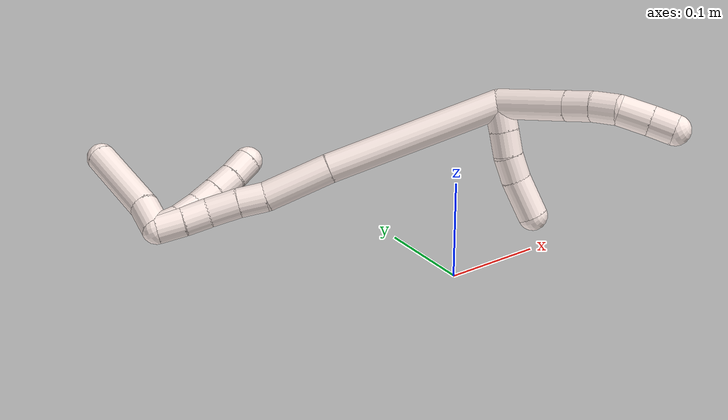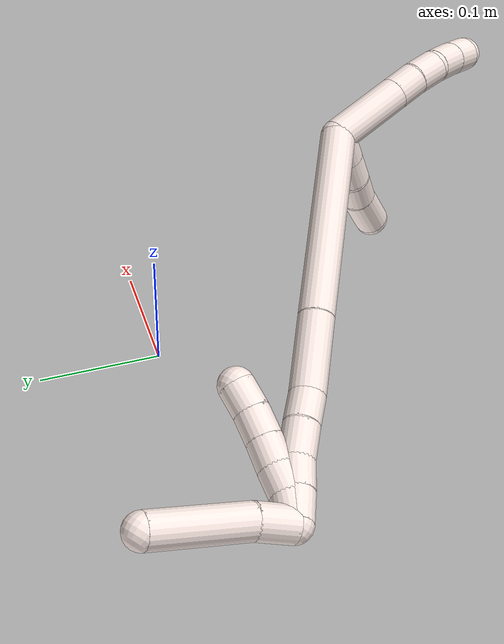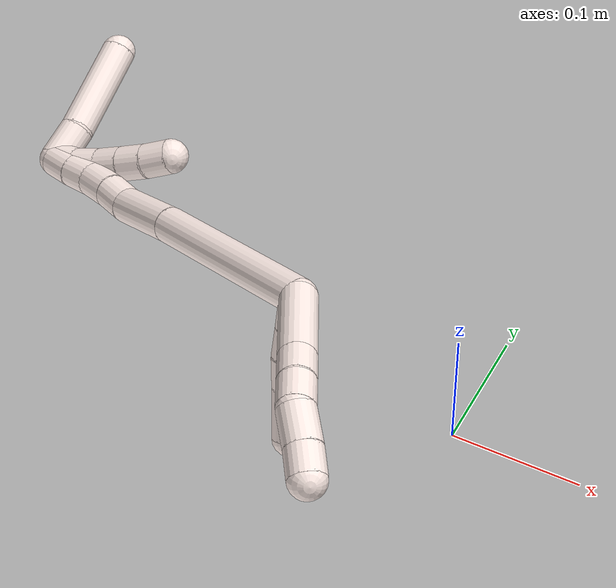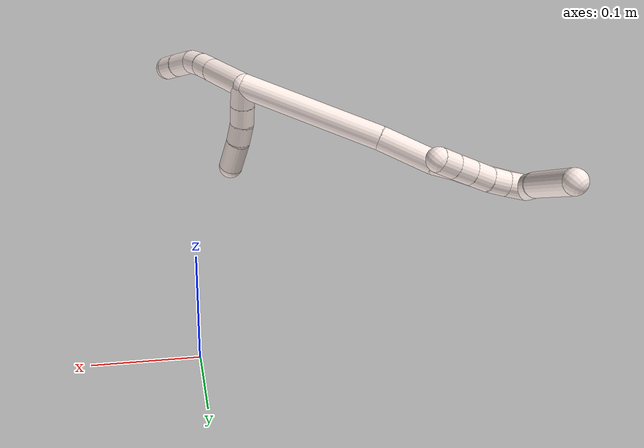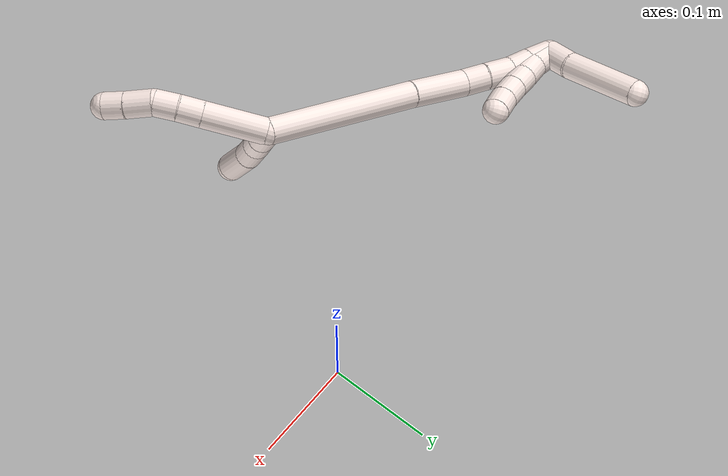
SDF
<sdf version="1.7">
 <world name="default">
  <model name="11">
   <static>0</static>
   <link name="11">
    <collision name="collision-cylinder-e_1_2_8">
     <pose>-0.000356 -0.01154 0.02748 0.397584 -0.01196 -0.002409</pose>
     <geometry><cylinder><radius>0.0125</radius><length>0.059614</length></cylinder></geometry>
     <surface>
      <friction><ode><mu>1.16</mu><mu2>1.16</mu2><slip1>0</slip1><slip2>0</slip2></ode></friction>
      <contact><ode><kp>1e+06</kp><kd>1</kd><max_vel>0</max_vel><min_depth>0.001</min_depth></ode></contact>
     </surface>
    </collision>
    <visual name="visual-cylinder-e_1_2_8">
     <pose>-0.000356 -0.01154 0.02748 0.397584 -0.01196 -0.002409</pose>
     <geometry><cylinder><radius>0.0125</radius><length>0.059614</length></cylinder></geometry>
     <material><ambient>1 0.933333 0.909804 1</ambient></material>
    </visual>
    <collision name="collision-cylinder-e_2_8_9">
     <pose>-0.000899 -0.02733 0.065221 0.392666 -0.016783 -0.003338</pose>
     <geometry><cylinder><radius>0.0125</radius><length>0.022214</length></cylinder></geometry>
     <surface>
      <friction><ode><mu>1.16</mu><mu2>1.16</mu2><slip1>0</slip1><slip2>0</slip2></ode></friction>
      <contact><ode><kp>1e+06</kp><kd>1</kd><max_vel>0</max_vel><min_depth>0.001</min_depth></ode></contact>
     </surface>
    </collision>
    <visual name="visual-cylinder-e_2_8_9">
     <pose>-0.000899 -0.02733 0.065221 0.392666 -0.016783 -0.003338</pose>
     <geometry><cylinder><radius>0.0125</radius><length>0.022214</length></cylinder></geometry>
     <material><ambient>1 0.933333 0.909804 1</ambient></material>
    </visual>
    <collision name="collision-cylinder-e_3_9_10">
     <pose>-0.000907 -0.036802 0.085121 0.496449 0.016315 0.004135</pose>
     <geometry><cylinder><radius>0.0125</radius><length>0.021929</length></cylinder></geometry>
     <surface>
      <friction><ode><mu>1.16</mu><mu2>1.16</mu2><slip1>0</slip1><slip2>0</slip2></ode></friction>
      <contact><ode><kp>1e+06</kp><kd>1</kd><max_vel>0</max_vel><min_depth>0.001</min_depth></ode></contact>
     </surface>
    </collision>
    <visual name="visual-cylinder-e_3_9_10">
     <pose>-0.000907 -0.036802 0.085121 0.496449 0.016315 0.004135</pose>
     <geometry><cylinder><radius>0.0125</radius><length>0.021929</length></cylinder></geometry>
     <material><ambient>1 0.933333 0.909804 1</ambient></material>
    </visual>
    <collision name="collision-cylinder-e_4_10_11">
     <pose>0.003004 -0.050134 0.10427 0.706178 0.290167 0.107589</pose>
     <geometry><cylinder><radius>0.0125</radius><length>0.026088</length></cylinder></geometry>
     <surface>
      <friction><ode><mu>1.16</mu><mu2>1.16</mu2><slip1>0</slip1><slip2>0</slip2></ode></friction>
      <contact><ode><kp>1e+06</kp><kd>1</kd><max_vel>0</max_vel><min_depth>0.001</min_depth></ode></contact>
     </surface>
    </collision>
    <visual name="visual-cylinder-e_4_10_11">
     <pose>0.003004 -0.050134 0.10427 0.706178 0.290167 0.107589</pose>
     <geometry><cylinder><radius>0.0125</radius><length>0.026088</length></cylinder></geometry>
     <material><ambient>1 0.933333 0.909804 1</ambient></material>
    </visual>
    <collision name="collision-cylinder-e_5_11_6">
     <pose>0.009119 -0.064805 0.121048 0.734205 0.238788 0.092195</pose>
     <geometry><cylinder><radius>0.0125</radius><length>0.020154</length></cylinder></geometry>
     <surface>
      <friction><ode><mu>1.16</mu><mu2>1.16</mu2><slip1>0</slip1><slip2>0</slip2></ode></friction>
      <contact><ode><kp>1e+06</kp><kd>1</kd><max_vel>0</max_vel><min_depth>0.001</min_depth></ode></contact>
     </surface>
    </collision>
    <visual name="visual-cylinder-e_5_11_6">
     <pose>0.009119 -0.064805 0.121048 0.734205 0.238788 0.092195</pose>
     <geometry><cylinder><radius>0.0125</radius><length>0.020154</length></cylinder></geometry>
     <material><ambient>1 0.933333 0.909804 1</ambient></material>
    </visual>
    <collision name="collision-cylinder-e_1_2_12">
     <pose>0.002697 -0.010672 -0.002666 1.81556 0.240459 0.306964</pose>
     <geometry><cylinder><radius>0.0125</radius><length>0.022652</length></cylinder></geometry>
     <surface>
      <friction><ode><mu>1.16</mu><mu2>1.16</mu2><slip1>0</slip1><slip2>0</slip2></ode></friction>
      <contact><ode><kp>1e+06</kp><kd>1</kd><max_vel>0</max_vel><min_depth>0.001</min_depth></ode></contact>
     </surface>
    </collision>
    <visual name="visual-cylinder-e_1_2_12">
     <pose>0.002697 -0.010672 -0.002666 1.81556 0.240459 0.306964</pose>
     <geometry><cylinder><radius>0.0125</radius><length>0.022652</length></cylinder></geometry>
     <material><ambient>1 0.933333 0.909804 1</ambient></material>
    </visual>
    <collision name="collision-cylinder-e_2_12_13">
     <pose>0.007796 -0.03132 -0.008045 1.83645 0.228196 0.297666</pose>
     <geometry><cylinder><radius>0.0125</radius><length>0.021228</length></cylinder></geometry>
     <surface>
      <friction><ode><mu>1.16</mu><mu2>1.16</mu2><slip1>0</slip1><slip2>0</slip2></ode></friction>
      <contact><ode><kp>1e+06</kp><kd>1</kd><max_vel>0</max_vel><min_depth>0.001</min_depth></ode></contact>
     </surface>
    </collision>
    <visual name="visual-cylinder-e_2_12_13">
     <pose>0.007796 -0.03132 -0.008045 1.83645 0.228196 0.297666</pose>
     <geometry><cylinder><radius>0.0125</radius><length>0.021228</length></cylinder></geometry>
     <material><ambient>1 0.933333 0.909804 1</ambient></material>
    </visual>
    <collision name="collision-cylinder-e_3_13_14">
     <pose>0.014073 -0.051312 -0.012421 1.73511 0.364758 0.428377</pose>
     <geometry><cylinder><radius>0.0125</radius><length>0.021736</length></cylinder></geometry>
     <surface>
      <friction><ode><mu>1.16</mu><mu2>1.16</mu2><slip1>0</slip1><slip2>0</slip2></ode></friction>
      <contact><ode><kp>1e+06</kp><kd>1</kd><max_vel>0</max_vel><min_depth>0.001</min_depth></ode></contact>
     </surface>
    </collision>
    <visual name="visual-cylinder-e_3_13_14">
     <pose>0.014073 -0.051312 -0.012421 1.73511 0.364758 0.428377</pose>
     <geometry><cylinder><radius>0.0125</radius><length>0.021736</length></cylinder></geometry>
     <material><ambient>1 0.933333 0.909804 1</ambient></material>
    </visual>
    <collision name="collision-cylinder-e_4_14_5">
     <pose>0.023472 -0.077607 -0.014391 1.58983 0.326953 0.333121</pose>
     <geometry><cylinder><radius>0.0125</radius><length>0.034385</length></cylinder></geometry>
     <surface>
      <friction><ode><mu>1.16</mu><mu2>1.16</mu2><slip1>0</slip1><slip2>0</slip2></ode></friction>
      <contact><ode><kp>1e+06</kp><kd>1</kd><max_vel>0</max_vel><min_depth>0.001</min_depth></ode></contact>
     </surface>
    </collision>
    <visual name="visual-cylinder-e_4_14_5">
     <pose>0.023472 -0.077607 -0.014391 1.58983 0.326953 0.333121</pose>
     <geometry><cylinder><radius>0.0125</radius><length>0.034385</length></cylinder></geometry>
     <material><ambient>1 0.933333 0.909804 1</ambient></material>
    </visual>
    <collision name="collision-cylinder-e_1_2_15">
     <pose>-0.035432 -0.004268 -0.065969 3.07698 -0.492014 -2.88558</pose>
     <geometry><cylinder><radius>0.0125</radius><length>0.150008</length></cylinder></geometry>
     <surface>
      <friction><ode><mu>1.16</mu><mu2>1.16</mu2><slip1>0</slip1><slip2>0</slip2></ode></friction>
      <contact><ode><kp>1e+06</kp><kd>1</kd><max_vel>0</max_vel><min_depth>0.001</min_depth></ode></contact>
     </surface>
    </collision>
    <visual name="visual-cylinder-e_1_2_15">
     <pose>-0.035432 -0.004268 -0.065969 3.07698 -0.492014 -2.88558</pose>
     <geometry><cylinder><radius>0.0125</radius><length>0.150008</length></cylinder></geometry>
     <material><ambient>1 0.933333 0.909804 1</ambient></material>
    </visual>
    <collision name="collision-cylinder-e_2_15_16">
     <pose>-0.083304 -0.011654 -0.157253 3.01906 -0.453797 -2.62221</pose>
     <geometry><cylinder><radius>0.0125</radius><length>0.056756</length></cylinder></geometry>
     <surface>
      <friction><ode><mu>1.16</mu><mu2>1.16</mu2><slip1>0</slip1><slip2>0</slip2></ode></friction>
      <contact><ode><kp>1e+06</kp><kd>1</kd><max_vel>0</max_vel><min_depth>0.001</min_depth></ode></contact>
     </surface>
    </collision>
    <visual name="visual-cylinder-e_2_15_16">
     <pose>-0.083304 -0.011654 -0.157253 3.01906 -0.453797 -2.62221</pose>
     <geometry><cylinder><radius>0.0125</radius><length>0.056756</length></cylinder></geometry>
     <material><ambient>1 0.933333 0.909804 1</ambient></material>
    </visual>
    <collision name="collision-cylinder-e_3_16_17">
     <pose>-0.101502 -0.013858 -0.192488 -3.04973 -0.524034 2.80211</pose>
     <geometry><cylinder><radius>0.0125</radius><length>0.023012</length></cylinder></geometry>
     <surface>
      <friction><ode><mu>1.16</mu><mu2>1.16</mu2><slip1>0</slip1><slip2>0</slip2></ode></friction>
      <contact><ode><kp>1e+06</kp><kd>1</kd><max_vel>0</max_vel><min_depth>0.001</min_depth></ode></contact>
     </surface>
    </collision>
    <visual name="visual-cylinder-e_3_16_17">
     <pose>-0.101502 -0.013858 -0.192488 -3.04973 -0.524034 2.80211</pose>
     <geometry><cylinder><radius>0.0125</radius><length>0.023012</length></cylinder></geometry>
     <material><ambient>1 0.933333 0.909804 1</ambient></material>
    </visual>
    <collision name="collision-cylinder-e_4_17_18">
     <pose>-0.113477 -0.013016 -0.213781 3.13524 -0.500301 -3.11673</pose>
     <geometry><cylinder><radius>0.0125</radius><length>0.025923</length></cylinder></geometry>
     <surface>
      <friction><ode><mu>1.16</mu><mu2>1.16</mu2><slip1>0</slip1><slip2>0</slip2></ode></friction>
      <contact><ode><kp>1e+06</kp><kd>1</kd><max_vel>0</max_vel><min_depth>0.001</min_depth></ode></contact>
     </surface>
    </collision>
    <visual name="visual-cylinder-e_4_17_18">
     <pose>-0.113477 -0.013016 -0.213781 3.13524 -0.500301 -3.11673</pose>
     <geometry><cylinder><radius>0.0125</radius><length>0.025923</length></cylinder></geometry>
     <material><ambient>1 0.933333 0.909804 1</ambient></material>
    </visual>
    <collision name="collision-cylinder-e_5_18_19">
     <pose>-0.126171 -0.013682 -0.233839 3.07335 -0.639547 -2.93616</pose>
     <geometry><cylinder><radius>0.0125</radius><length>0.021701</length></cylinder></geometry>
     <surface>
      <friction><ode><mu>1.16</mu><mu2>1.16</mu2><slip1>0</slip1><slip2>0</slip2></ode></friction>
      <contact><ode><kp>1e+06</kp><kd>1</kd><max_vel>0</max_vel><min_depth>0.001</min_depth></ode></contact>
     </surface>
    </collision>
    <visual name="visual-cylinder-e_5_18_19">
     <pose>-0.126171 -0.013682 -0.233839 3.07335 -0.639547 -2.93616</pose>
     <geometry><cylinder><radius>0.0125</radius><length>0.021701</length></cylinder></geometry>
     <material><ambient>1 0.933333 0.909804 1</ambient></material>
    </visual>
    <collision name="collision-cylinder-e_6_19_1">
     <pose>-0.13918 -0.014182 -0.251744 -3.13139 -0.616524 3.10956</pose>
     <geometry><cylinder><radius>0.0125</radius><length>0.0226</length></cylinder></geometry>
     <surface>
      <friction><ode><mu>1.16</mu><mu2>1.16</mu2><slip1>0</slip1><slip2>0</slip2></ode></friction>
      <contact><ode><kp>1e+06</kp><kd>1</kd><max_vel>0</max_vel><min_depth>0.001</min_depth></ode></contact>
     </surface>
    </collision>
    <visual name="visual-cylinder-e_6_19_1">
     <pose>-0.13918 -0.014182 -0.251744 -3.13139 -0.616524 3.10956</pose>
     <geometry><cylinder><radius>0.0125</radius><length>0.0226</length></cylinder></geometry>
     <material><ambient>1 0.933333 0.909804 1</ambient></material>
    </visual>
    <collision name="collision-cylinder-e_1_1_20">
     <pose>-0.138666 -0.012618 -0.254023 -0.208733 0.782077 -0.086314</pose>
     <geometry><cylinder><radius>0.0125</radius><length>0.02</length></cylinder></geometry>
     <surface>
      <friction><ode><mu>1.16</mu><mu2>1.16</mu2><slip1>0</slip1><slip2>0</slip2></ode></friction>
      <contact><ode><kp>1e+06</kp><kd>1</kd><max_vel>0</max_vel><min_depth>0.001</min_depth></ode></contact>
     </surface>
    </collision>
    <visual name="visual-cylinder-e_1_1_20">
     <pose>-0.138666 -0.012618 -0.254023 -0.208733 0.782077 -0.086314</pose>
     <geometry><cylinder><radius>0.0125</radius><length>0.02</length></cylinder></geometry>
     <material><ambient>1 0.933333 0.909804 1</ambient></material>
    </visual>
    <collision name="collision-cylinder-e_2_20_21">
     <pose>-0.124111 -0.007614 -0.241501 -0.564432 0.849251 -0.260709</pose>
     <geometry><cylinder><radius>0.0125</radius><length>0.02</length></cylinder></geometry>
     <surface>
      <friction><ode><mu>1.16</mu><mu2>1.16</mu2><slip1>0</slip1><slip2>0</slip2></ode></friction>
      <contact><ode><kp>1e+06</kp><kd>1</kd><max_vel>0</max_vel><min_depth>0.001</min_depth></ode></contact>
     </surface>
    </collision>
    <visual name="visual-cylinder-e_2_20_21">
     <pose>-0.124111 -0.007614 -0.241501 -0.564432 0.849251 -0.260709</pose>
     <geometry><cylinder><radius>0.0125</radius><length>0.02</length></cylinder></geometry>
     <material><ambient>1 0.933333 0.909804 1</ambient></material>
    </visual>
    <collision name="collision-cylinder-e_3_21_22">
     <pose>-0.109788 0.000154 -0.229952 -0.61708 0.749834 -0.249548</pose>
     <geometry><cylinder><radius>0.0125</radius><length>0.02</length></cylinder></geometry>
     <surface>
      <friction><ode><mu>1.16</mu><mu2>1.16</mu2><slip1>0</slip1><slip2>0</slip2></ode></friction>
      <contact><ode><kp>1e+06</kp><kd>1</kd><max_vel>0</max_vel><min_depth>0.001</min_depth></ode></contact>
     </surface>
    </collision>
    <visual name="visual-cylinder-e_3_21_22">
     <pose>-0.109788 0.000154 -0.229952 -0.61708 0.749834 -0.249548</pose>
     <geometry><cylinder><radius>0.0125</radius><length>0.02</length></cylinder></geometry>
     <material><ambient>1 0.933333 0.909804 1</ambient></material>
    </visual>
    <collision name="collision-cylinder-e_4_22_23">
     <pose>-0.096052 0.008838 -0.218299 -0.664074 0.764299 -0.275403</pose>
     <geometry><cylinder><radius>0.0125</radius><length>0.02</length></cylinder></geometry>
     <surface>
      <friction><ode><mu>1.16</mu><mu2>1.16</mu2><slip1>0</slip1><slip2>0</slip2></ode></friction>
      <contact><ode><kp>1e+06</kp><kd>1</kd><max_vel>0</max_vel><min_depth>0.001</min_depth></ode></contact>
     </surface>
    </collision>
    <visual name="visual-cylinder-e_4_22_23">
     <pose>-0.096052 0.008838 -0.218299 -0.664074 0.764299 -0.275403</pose>
     <geometry><cylinder><radius>0.0125</radius><length>0.02</length></cylinder></geometry>
     <material><ambient>1 0.933333 0.909804 1</ambient></material>
    </visual>
    <collision name="collision-cylinder-e_5_23_4">
     <pose>-0.082118 0.018436 -0.207685 -0.80724 0.777302 -0.346249</pose>
     <geometry><cylinder><radius>0.0125</radius><length>0.02</length></cylinder></geometry>
     <surface>
      <friction><ode><mu>1.16</mu><mu2>1.16</mu2><slip1>0</slip1><slip2>0</slip2></ode></friction>
      <contact><ode><kp>1e+06</kp><kd>1</kd><max_vel>0</max_vel><min_depth>0.001</min_depth></ode></contact>
     </surface>
    </collision>
    <visual name="visual-cylinder-e_5_23_4">
     <pose>-0.082118 0.018436 -0.207685 -0.80724 0.777302 -0.346249</pose>
     <geometry><cylinder><radius>0.0125</radius><length>0.02</length></cylinder></geometry>
     <material><ambient>1 0.933333 0.909804 1</ambient></material>
    </visual>
    <collision name="collision-cylinder-e_1_1_24">
     <pose>-0.141486 -0.002463 -0.266903 -2.04318 0.31323 -0.505017</pose>
     <geometry><cylinder><radius>0.0125</radius><length>0.027443</length></cylinder></geometry>
     <surface>
      <friction><ode><mu>1.16</mu><mu2>1.16</mu2><slip1>0</slip1><slip2>0</slip2></ode></friction>
      <contact><ode><kp>1e+06</kp><kd>1</kd><max_vel>0</max_vel><min_depth>0.001</min_depth></ode></contact>
     </surface>
    </collision>
    <visual name="visual-cylinder-e_1_1_24">
     <pose>-0.141486 -0.002463 -0.266903 -2.04318 0.31323 -0.505017</pose>
     <geometry><cylinder><radius>0.0125</radius><length>0.027443</length></cylinder></geometry>
     <material><ambient>1 0.933333 0.909804 1</ambient></material>
    </visual>
    <collision name="collision-cylinder-e_2_24_3">
     <pose>-0.129602 0.038185 -0.293217 -2.18284 0.21263 -0.404968</pose>
     <geometry><cylinder><radius>0.0125</radius><length>0.072557</length></cylinder></geometry>
     <surface>
      <friction><ode><mu>1.16</mu><mu2>1.16</mu2><slip1>0</slip1><slip2>0</slip2></ode></friction>
      <contact><ode><kp>1e+06</kp><kd>1</kd><max_vel>0</max_vel><min_depth>0.001</min_depth></ode></contact>
     </surface>
    </collision>
    <visual name="visual-cylinder-e_2_24_3">
     <pose>-0.129602 0.038185 -0.293217 -2.18284 0.21263 -0.404968</pose>
     <geometry><cylinder><radius>0.0125</radius><length>0.072557</length></cylinder></geometry>
     <material><ambient>1 0.933333 0.909804 1</ambient></material>
    </visual>
    <collision name="collision-sphere-3">
     <pose>-0.121946 0.067209 -0.313591 0 -0 0</pose>
     <geometry><sphere><radius>0.0125</radius></sphere></geometry>
     <surface>
      <friction><ode><mu>1.16</mu><mu2>1.16</mu2><slip1>0</slip1><slip2>0</slip2></ode></friction>
      <contact><ode><kp>1e+06</kp><kd>1</kd><max_vel>0</max_vel><min_depth>0.001</min_depth></ode></contact>
     </surface>
    </collision>
    <visual name="visual-sphere-3">
     <pose>-0.121946 0.067209 -0.313591 0 -0 0</pose>
     <geometry><sphere><radius>0.0125</radius></sphere></geometry>
     <material><ambient>1 0.933333 0.909804 1</ambient></material>
    </visual>
    <collision name="collision-sphere-24">
     <pose>-0.137258 0.009161 -0.272842 0 -0 0</pose>
     <geometry><sphere><radius>0.0125</radius></sphere></geometry>
     <surface>
      <friction><ode><mu>1.16</mu><mu2>1.16</mu2><slip1>0</slip1><slip2>0</slip2></ode></friction>
      <contact><ode><kp>1e+06</kp><kd>1</kd><max_vel>0</max_vel><min_depth>0.001</min_depth></ode></contact>
     </surface>
    </collision>
    <visual name="visual-sphere-24">
     <pose>-0.137258 0.009161 -0.272842 0 -0 0</pose>
     <geometry><sphere><radius>0.0125</radius></sphere></geometry>
     <material><ambient>1 0.933333 0.909804 1</ambient></material>
    </visual>
    <collision name="collision-sphere-4">
     <pose>-0.075105 0.023585 -0.202756 0 -0 0</pose>
     <geometry><sphere><radius>0.0125</radius></sphere></geometry>
     <surface>
      <friction><ode><mu>1.16</mu><mu2>1.16</mu2><slip1>0</slip1><slip2>0</slip2></ode></friction>
      <contact><ode><kp>1e+06</kp><kd>1</kd><max_vel>0</max_vel><min_depth>0.001</min_depth></ode></contact>
     </surface>
    </collision>
    <visual name="visual-sphere-4">
     <pose>-0.075105 0.023585 -0.202756 0 -0 0</pose>
     <geometry><sphere><radius>0.0125</radius></sphere></geometry>
     <material><ambient>1 0.933333 0.909804 1</ambient></material>
    </visual>
    <collision name="collision-sphere-23">
     <pose>-0.089132 0.013287 -0.212614 0 -0 0</pose>
     <geometry><sphere><radius>0.0125</radius></sphere></geometry>
     <surface>
      <friction><ode><mu>1.16</mu><mu2>1.16</mu2><slip1>0</slip1><slip2>0</slip2></ode></friction>
      <contact><ode><kp>1e+06</kp><kd>1</kd><max_vel>0</max_vel><min_depth>0.001</min_depth></ode></contact>
     </surface>
    </collision>
    <visual name="visual-sphere-23">
     <pose>-0.089132 0.013287 -0.212614 0 -0 0</pose>
     <geometry><sphere><radius>0.0125</radius></sphere></geometry>
     <material><ambient>1 0.933333 0.909804 1</ambient></material>
    </visual>
    <collision name="collision-sphere-22">
     <pose>-0.102973 0.004389 -0.223983 0 -0 0</pose>
     <geometry><sphere><radius>0.0125</radius></sphere></geometry>
     <surface>
      <friction><ode><mu>1.16</mu><mu2>1.16</mu2><slip1>0</slip1><slip2>0</slip2></ode></friction>
      <contact><ode><kp>1e+06</kp><kd>1</kd><max_vel>0</max_vel><min_depth>0.001</min_depth></ode></contact>
     </surface>
    </collision>
    <visual name="visual-sphere-22">
     <pose>-0.102973 0.004389 -0.223983 0 -0 0</pose>
     <geometry><sphere><radius>0.0125</radius></sphere></geometry>
     <material><ambient>1 0.933333 0.909804 1</ambient></material>
    </visual>
    <collision name="collision-sphere-21">
     <pose>-0.116603 -0.00408 -0.23592 0 -0 0</pose>
     <geometry><sphere><radius>0.0125</radius></sphere></geometry>
     <surface>
      <friction><ode><mu>1.16</mu><mu2>1.16</mu2><slip1>0</slip1><slip2>0</slip2></ode></friction>
      <contact><ode><kp>1e+06</kp><kd>1</kd><max_vel>0</max_vel><min_depth>0.001</min_depth></ode></contact>
     </surface>
    </collision>
    <visual name="visual-sphere-21">
     <pose>-0.116603 -0.00408 -0.23592 0 -0 0</pose>
     <geometry><sphere><radius>0.0125</radius></sphere></geometry>
     <material><ambient>1 0.933333 0.909804 1</ambient></material>
    </visual>
    <collision name="collision-sphere-20">
     <pose>-0.131619 -0.011147 -0.247082 0 -0 0</pose>
     <geometry><sphere><radius>0.0125</radius></sphere></geometry>
     <surface>
      <friction><ode><mu>1.16</mu><mu2>1.16</mu2><slip1>0</slip1><slip2>0</slip2></ode></friction>
      <contact><ode><kp>1e+06</kp><kd>1</kd><max_vel>0</max_vel><min_depth>0.001</min_depth></ode></contact>
     </surface>
    </collision>
    <visual name="visual-sphere-20">
     <pose>-0.131619 -0.011147 -0.247082 0 -0 0</pose>
     <geometry><sphere><radius>0.0125</radius></sphere></geometry>
     <material><ambient>1 0.933333 0.909804 1</ambient></material>
    </visual>
    <collision name="collision-sphere-6">
     <pose>0.011503 -0.071365 0.128317 0 -0 0</pose>
     <geometry><sphere><radius>0.0125</radius></sphere></geometry>
     <surface>
      <friction><ode><mu>1.16</mu><mu2>1.16</mu2><slip1>0</slip1><slip2>0</slip2></ode></friction>
      <contact><ode><kp>1e+06</kp><kd>1</kd><max_vel>0</max_vel><min_depth>0.001</min_depth></ode></contact>
     </surface>
    </collision>
    <visual name="visual-sphere-6">
     <pose>0.011503 -0.071365 0.128317 0 -0 0</pose>
     <geometry><sphere><radius>0.0125</radius></sphere></geometry>
     <material><ambient>1 0.933333 0.909804 1</ambient></material>
    </visual>
    <collision name="collision-sphere-11">
     <pose>0.006736 -0.058245 0.11378 0 -0 0</pose>
     <geometry><sphere><radius>0.0125</radius></sphere></geometry>
     <surface>
      <friction><ode><mu>1.16</mu><mu2>1.16</mu2><slip1>0</slip1><slip2>0</slip2></ode></friction>
      <contact><ode><kp>1e+06</kp><kd>1</kd><max_vel>0</max_vel><min_depth>0.001</min_depth></ode></contact>
     </surface>
    </collision>
    <visual name="visual-sphere-11">
     <pose>0.006736 -0.058245 0.11378 0 -0 0</pose>
     <geometry><sphere><radius>0.0125</radius></sphere></geometry>
     <material><ambient>1 0.933333 0.909804 1</ambient></material>
    </visual>
    <collision name="collision-sphere-10">
     <pose>-0.000728 -0.042023 0.094761 0 -0 0</pose>
     <geometry><sphere><radius>0.0125</radius></sphere></geometry>
     <surface>
      <friction><ode><mu>1.16</mu><mu2>1.16</mu2><slip1>0</slip1><slip2>0</slip2></ode></friction>
      <contact><ode><kp>1e+06</kp><kd>1</kd><max_vel>0</max_vel><min_depth>0.001</min_depth></ode></contact>
     </surface>
    </collision>
    <visual name="visual-sphere-10">
     <pose>-0.000728 -0.042023 0.094761 0 -0 0</pose>
     <geometry><sphere><radius>0.0125</radius></sphere></geometry>
     <material><ambient>1 0.933333 0.909804 1</ambient></material>
    </visual>
    <collision name="collision-sphere-9">
     <pose>-0.001086 -0.03158 0.075481 0 -0 0</pose>
     <geometry><sphere><radius>0.0125</radius></sphere></geometry>
     <surface>
      <friction><ode><mu>1.16</mu><mu2>1.16</mu2><slip1>0</slip1><slip2>0</slip2></ode></friction>
      <contact><ode><kp>1e+06</kp><kd>1</kd><max_vel>0</max_vel><min_depth>0.001</min_depth></ode></contact>
     </surface>
    </collision>
    <visual name="visual-sphere-9">
     <pose>-0.001086 -0.03158 0.075481 0 -0 0</pose>
     <geometry><sphere><radius>0.0125</radius></sphere></geometry>
     <material><ambient>1 0.933333 0.909804 1</ambient></material>
    </visual>
    <collision name="collision-sphere-2">
     <geometry><sphere><radius>0.0125</radius></sphere></geometry>
     <surface>
      <friction><ode><mu>1.16</mu><mu2>1.16</mu2><slip1>0</slip1><slip2>0</slip2></ode></friction>
      <contact><ode><kp>1e+06</kp><kd>1</kd><max_vel>0</max_vel><min_depth>0.001</min_depth></ode></contact>
     </surface>
    </collision>
    <visual name="visual-sphere-2">
     <geometry><sphere><radius>0.0125</radius></sphere></geometry>
     <material><ambient>1 0.933333 0.909804 1</ambient></material>
    </visual>
    <collision name="collision-sphere-19">
     <pose>-0.132647 -0.014276 -0.242525 0 -0 0</pose>
     <geometry><sphere><radius>0.0125</radius></sphere></geometry>
     <surface>
      <friction><ode><mu>1.16</mu><mu2>1.16</mu2><slip1>0</slip1><slip2>0</slip2></ode></friction>
      <contact><ode><kp>1e+06</kp><kd>1</kd><max_vel>0</max_vel><min_depth>0.001</min_depth></ode></contact>
     </surface>
    </collision>
    <visual name="visual-sphere-19">
     <pose>-0.132647 -0.014276 -0.242525 0 -0 0</pose>
     <geometry><sphere><radius>0.0125</radius></sphere></geometry>
     <material><ambient>1 0.933333 0.909804 1</ambient></material>
    </visual>
    <collision name="collision-sphere-8">
     <pose>-0.000713 -0.023081 0.05496 0 -0 0</pose>
     <geometry><sphere><radius>0.0125</radius></sphere></geometry>
     <surface>
      <friction><ode><mu>1.16</mu><mu2>1.16</mu2><slip1>0</slip1><slip2>0</slip2></ode></friction>
      <contact><ode><kp>1e+06</kp><kd>1</kd><max_vel>0</max_vel><min_depth>0.001</min_depth></ode></contact>
     </surface>
    </collision>
    <visual name="visual-sphere-8">
     <pose>-0.000713 -0.023081 0.05496 0 -0 0</pose>
     <geometry><sphere><radius>0.0125</radius></sphere></geometry>
     <material><ambient>1 0.933333 0.909804 1</ambient></material>
    </visual>
    <collision name="collision-sphere-12">
     <pose>0.005394 -0.021344 -0.005331 0 -0 0</pose>
     <geometry><sphere><radius>0.0125</radius></sphere></geometry>
     <surface>
      <friction><ode><mu>1.16</mu><mu2>1.16</mu2><slip1>0</slip1><slip2>0</slip2></ode></friction>
      <contact><ode><kp>1e+06</kp><kd>1</kd><max_vel>0</max_vel><min_depth>0.001</min_depth></ode></contact>
     </surface>
    </collision>
    <visual name="visual-sphere-12">
     <pose>0.005394 -0.021344 -0.005331 0 -0 0</pose>
     <geometry><sphere><radius>0.0125</radius></sphere></geometry>
     <material><ambient>1 0.933333 0.909804 1</ambient></material>
    </visual>
    <collision name="collision-sphere-13">
     <pose>0.010197 -0.041296 -0.01076 0 -0 0</pose>
     <geometry><sphere><radius>0.0125</radius></sphere></geometry>
     <surface>
      <friction><ode><mu>1.16</mu><mu2>1.16</mu2><slip1>0</slip1><slip2>0</slip2></ode></friction>
      <contact><ode><kp>1e+06</kp><kd>1</kd><max_vel>0</max_vel><min_depth>0.001</min_depth></ode></contact>
     </surface>
    </collision>
    <visual name="visual-sphere-13">
     <pose>0.010197 -0.041296 -0.01076 0 -0 0</pose>
     <geometry><sphere><radius>0.0125</radius></sphere></geometry>
     <material><ambient>1 0.933333 0.909804 1</ambient></material>
    </visual>
    <collision name="collision-sphere-14">
     <pose>0.01795 -0.061328 -0.014081 0 -0 0</pose>
     <geometry><sphere><radius>0.0125</radius></sphere></geometry>
     <surface>
      <friction><ode><mu>1.16</mu><mu2>1.16</mu2><slip1>0</slip1><slip2>0</slip2></ode></friction>
      <contact><ode><kp>1e+06</kp><kd>1</kd><max_vel>0</max_vel><min_depth>0.001</min_depth></ode></contact>
     </surface>
    </collision>
    <visual name="visual-sphere-14">
     <pose>0.01795 -0.061328 -0.014081 0 -0 0</pose>
     <geometry><sphere><radius>0.0125</radius></sphere></geometry>
     <material><ambient>1 0.933333 0.909804 1</ambient></material>
    </visual>
    <collision name="collision-sphere-5">
     <pose>0.028993 -0.093886 -0.014701 0 -0 0</pose>
     <geometry><sphere><radius>0.0125</radius></sphere></geometry>
     <surface>
      <friction><ode><mu>1.16</mu><mu2>1.16</mu2><slip1>0</slip1><slip2>0</slip2></ode></friction>
      <contact><ode><kp>1e+06</kp><kd>1</kd><max_vel>0</max_vel><min_depth>0.001</min_depth></ode></contact>
     </surface>
    </collision>
    <visual name="visual-sphere-5">
     <pose>0.028993 -0.093886 -0.014701 0 -0 0</pose>
     <geometry><sphere><radius>0.0125</radius></sphere></geometry>
     <material><ambient>1 0.933333 0.909804 1</ambient></material>
    </visual>
    <collision name="collision-sphere-15">
     <pose>-0.070864 -0.008537 -0.131938 0 -0 0</pose>
     <geometry><sphere><radius>0.0125</radius></sphere></geometry>
     <surface>
      <friction><ode><mu>1.16</mu><mu2>1.16</mu2><slip1>0</slip1><slip2>0</slip2></ode></friction>
      <contact><ode><kp>1e+06</kp><kd>1</kd><max_vel>0</max_vel><min_depth>0.001</min_depth></ode></contact>
     </surface>
    </collision>
    <visual name="visual-sphere-15">
     <pose>-0.070864 -0.008537 -0.131938 0 -0 0</pose>
     <geometry><sphere><radius>0.0125</radius></sphere></geometry>
     <material><ambient>1 0.933333 0.909804 1</ambient></material>
    </visual>
    <collision name="collision-sphere-16">
     <pose>-0.095745 -0.014772 -0.182568 0 -0 0</pose>
     <geometry><sphere><radius>0.0125</radius></sphere></geometry>
     <surface>
      <friction><ode><mu>1.16</mu><mu2>1.16</mu2><slip1>0</slip1><slip2>0</slip2></ode></friction>
      <contact><ode><kp>1e+06</kp><kd>1</kd><max_vel>0</max_vel><min_depth>0.001</min_depth></ode></contact>
     </surface>
    </collision>
    <visual name="visual-sphere-16">
     <pose>-0.095745 -0.014772 -0.182568 0 -0 0</pose>
     <geometry><sphere><radius>0.0125</radius></sphere></geometry>
     <material><ambient>1 0.933333 0.909804 1</ambient></material>
    </visual>
    <collision name="collision-sphere-17">
     <pose>-0.10726 -0.012944 -0.202408 0 -0 0</pose>
     <geometry><sphere><radius>0.0125</radius></sphere></geometry>
     <surface>
      <friction><ode><mu>1.16</mu><mu2>1.16</mu2><slip1>0</slip1><slip2>0</slip2></ode></friction>
      <contact><ode><kp>1e+06</kp><kd>1</kd><max_vel>0</max_vel><min_depth>0.001</min_depth></ode></contact>
     </surface>
    </collision>
    <visual name="visual-sphere-17">
     <pose>-0.10726 -0.012944 -0.202408 0 -0 0</pose>
     <geometry><sphere><radius>0.0125</radius></sphere></geometry>
     <material><ambient>1 0.933333 0.909804 1</ambient></material>
    </visual>
    <collision name="collision-sphere-18">
     <pose>-0.119695 -0.013088 -0.225153 0 -0 0</pose>
     <geometry><sphere><radius>0.0125</radius></sphere></geometry>
     <surface>
      <friction><ode><mu>1.16</mu><mu2>1.16</mu2><slip1>0</slip1><slip2>0</slip2></ode></friction>
      <contact><ode><kp>1e+06</kp><kd>1</kd><max_vel>0</max_vel><min_depth>0.001</min_depth></ode></contact>
     </surface>
    </collision>
    <visual name="visual-sphere-18">
     <pose>-0.119695 -0.013088 -0.225153 0 -0 0</pose>
     <geometry><sphere><radius>0.0125</radius></sphere></geometry>
     <material><ambient>1 0.933333 0.909804 1</ambient></material>
    </visual>
    <collision name="collision-sphere-1">
     <pose>-0.145714 -0.014088 -0.260963 0 -0 0</pose>
     <geometry><sphere><radius>0.0125</radius></sphere></geometry>
     <surface>
      <friction><ode><mu>1.16</mu><mu2>1.16</mu2><slip1>0</slip1><slip2>0</slip2></ode></friction>
      <contact><ode><kp>1e+06</kp><kd>1</kd><max_vel>0</max_vel><min_depth>0.001</min_depth></ode></contact>
     </surface>
    </collision>
    <visual name="visual-sphere-1">
     <pose>-0.145714 -0.014088 -0.260963 0 -0 0</pose>
     <geometry><sphere><radius>0.0125</radius></sphere></geometry>
     <material><ambient>1 0.933333 0.909804 1</ambient></material>
    </visual>
    <inertial>
     <pose>-0.058619 -0.01218 -0.109423 0 -0 0</pose>
     <mass>0.75</mass>
     <inertia>
      <ixx>-0.000275</ixx>
      <ixy>0</ixy>
      <ixz>0</ixz>
      <iyy>0.000228</iyy>
      <iyz>0</iyz>
      <izz>0.000126</izz>
     </inertia>
    </inertial>
   </link>
   <pose>-0.059115 -0.126334 0.236232 1.01469 0.358249 0.42459</pose>
  </model>
 </world>
</sdf>
